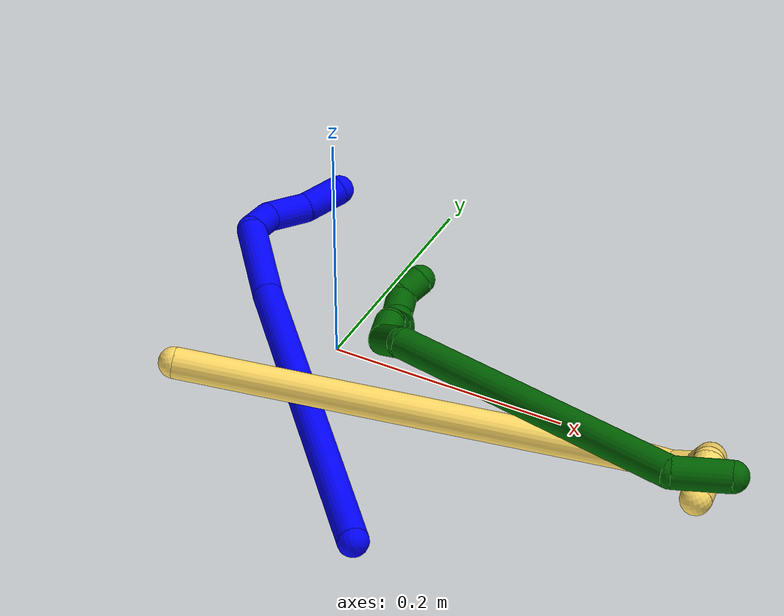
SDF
<sdf version="1.7">
 <world name="default">
  <model name="photoneo_s_sensor">
   <static>1</static>
   <pose>0 0 2 1.57079 1.57079 3.14159</pose>
   <link name="link">
    <inertial><mass>0.1</mass></inertial>
    <sensor name="sensor" type="depth">
     <update_rate>30</update_rate>
     <camera>
      <horizontal_fov>1.22</horizontal_fov>
      <image><width>1920</width><height>1200</height><format>B8G8R8</format></image>
      <clip><near>0.1</near><far>4</far></clip>
      <depth_camera><output>points</output></depth_camera>
     </camera>
     <plugin name="camera_plugin" filename="libgazebo_ros_depth_camera.so">
      <baseline>0.2</baseline>
      <alwaysOn>1</alwaysOn>
      <updateRate>0.0</updateRate>
      <cameraName>camera_ir</cameraName>
      <imageTopicName>/camera/color/image_raw</imageTopicName>
      <cameraInfoTopicName>/camera/color/camera_info</cameraInfoTopicName>
      <depthImageTopicName>/camera/depth/image_raw</depthImageTopicName>
      <depthImageCameraInfoTopicName>/camera/depth/camera_info</depthImageCameraInfoTopicName>
      <pointCloudTopicName>/camera/depth/points</pointCloudTopicName>
      <frameName>fr_optical</frameName>
      <pointCloudCutoff>0.1</pointCloudCutoff>
      <pointCloudCutoffMax>2.0</pointCloudCutoffMax>
      <distortionK1>0</distortionK1>
      <distortionK2>0</distortionK2>
      <distortionK3>0</distortionK3>
      <distortionT1>0</distortionT1>
      <distortionT2>0</distortionT2>
      <CxPrime>0</CxPrime>
      <Cx>0</Cx>
      <Cy>0</Cy>
      <focalLength>0</focalLength>
      <hackBaseline>0</hackBaseline>
     </plugin>
    </sensor>
   </link>
  </model>
  <model name="bin">
   <static>1</static>
   <link name="bottom">
    <collision name="collision-bottom">
     <pose>0 0 -0.01 0 -0 0</pose>
     <geometry><box><size>0.8 0.6 0.02</size></box></geometry>
     <surface>
      <friction><ode><mu>100</mu><mu2>100</mu2></ode></friction>
      <contact><collide_bitmask>65535</collide_bitmask></contact>
     </surface>
    </collision>
   </link>
   <link name="west_wall">
    <collision name="collision-west_wall">
     <pose>-0.41 0 0.1 0 -0 0</pose>
     <geometry><box><size>0.02 0.6 0.2</size></box></geometry>
     <surface>
      <friction><ode><mu>100</mu><mu2>100</mu2></ode></friction>
      <contact><collide_bitmask>65535</collide_bitmask></contact>
     </surface>
    </collision>
   </link>
   <link name="east_wall">
    <collision name="collision-east_wall">
     <pose>0.41 0 0.1 0 -0 0</pose>
     <geometry><box><size>0.02 0.6 0.2</size></box></geometry>
     <surface>
      <friction><ode><mu>100</mu><mu2>100</mu2></ode></friction>
      <contact><collide_bitmask>65535</collide_bitmask></contact>
     </surface>
    </collision>
   </link>
   <link name="south_wall">
    <collision name="collision-south_wall">
     <pose>0 -0.31 0.1 0 -0 0</pose>
     <geometry><box><size>0.8 0.02 0.2</size></box></geometry>
     <surface>
      <friction><ode><mu>100</mu><mu2>100</mu2></ode></friction>
      <contact><collide_bitmask>65535</collide_bitmask></contact>
     </surface>
    </collision>
   </link>
   <link name="north_wall">
    <collision name="collision-north_wall">
     <pose>0 0.31 0.1 0 -0 0</pose>
     <geometry><box><size>0.8 0.02 0.2</size></box></geometry>
     <surface>
      <friction><ode><mu>100</mu><mu2>100</mu2></ode></friction>
      <contact><collide_bitmask>65535</collide_bitmask></contact>
     </surface>
    </collision>
   </link>
  </model>
  <model name="1">
   <static>0</static>
   <link name="1">
    <collision name="collision-cylinder-e_1_1_4">
     <pose>-0.100348 0.091365 -0.085032 -2.32031 -0.677172 1.36016</pose>
     <geometry><cylinder><radius>0.0125</radius><length>0.320299</length></cylinder></geometry>
     <surface>
      <friction><ode><mu>1.16</mu><mu2>1.16</mu2><slip1>0</slip1><slip2>0</slip2></ode></friction>
      <contact><ode><kp>1e+06</kp><kd>1</kd><max_vel>0</max_vel><min_depth>0.001</min_depth></ode></contact>
     </surface>
    </collision>
    <visual name="visual-cylinder-e_1_1_4">
     <pose>-0.100348 0.091365 -0.085032 -2.32031 -0.677172 1.36016</pose>
     <geometry><cylinder><radius>0.0125</radius><length>0.320299</length></cylinder></geometry>
     <material><ambient>0 0 1 1</ambient></material>
    </visual>
    <collision name="collision-cylinder-e_2_4_5">
     <pose>-0.229288 0.204224 -0.185956 -2.20748 -0.81902 1.42141</pose>
     <geometry><cylinder><radius>0.0125</radius><length>0.078281</length></cylinder></geometry>
     <surface>
      <friction><ode><mu>1.16</mu><mu2>1.16</mu2><slip1>0</slip1><slip2>0</slip2></ode></friction>
      <contact><ode><kp>1e+06</kp><kd>1</kd><max_vel>0</max_vel><min_depth>0.001</min_depth></ode></contact>
     </surface>
    </collision>
    <visual name="visual-cylinder-e_2_4_5">
     <pose>-0.229288 0.204224 -0.185956 -2.20748 -0.81902 1.42141</pose>
     <geometry><cylinder><radius>0.0125</radius><length>0.078281</length></cylinder></geometry>
     <material><ambient>0 0 1 1</ambient></material>
    </visual>
    <collision name="collision-cylinder-e_3_5_6">
     <pose>-0.260822 0.240498 -0.2047 -1.76139 -0.193095 0.233572</pose>
     <geometry><cylinder><radius>0.0125</radius><length>0.030677</length></cylinder></geometry>
     <surface>
      <friction><ode><mu>1.16</mu><mu2>1.16</mu2><slip1>0</slip1><slip2>0</slip2></ode></friction>
      <contact><ode><kp>1e+06</kp><kd>1</kd><max_vel>0</max_vel><min_depth>0.001</min_depth></ode></contact>
     </surface>
    </collision>
    <visual name="visual-cylinder-e_3_5_6">
     <pose>-0.260822 0.240498 -0.2047 -1.76139 -0.193095 0.233572</pose>
     <geometry><cylinder><radius>0.0125</radius><length>0.030677</length></cylinder></geometry>
     <material><ambient>0 0 1 1</ambient></material>
    </visual>
    <collision name="collision-cylinder-e_4_6_7">
     <pose>-0.261681 0.272202 -0.201793 -1.24284 0.1161 -0.083179</pose>
     <geometry><cylinder><radius>0.0125</radius><length>0.035996</length></cylinder></geometry>
     <surface>
      <friction><ode><mu>1.16</mu><mu2>1.16</mu2><slip1>0</slip1><slip2>0</slip2></ode></friction>
      <contact><ode><kp>1e+06</kp><kd>1</kd><max_vel>0</max_vel><min_depth>0.001</min_depth></ode></contact>
     </surface>
    </collision>
    <visual name="visual-cylinder-e_4_6_7">
     <pose>-0.261681 0.272202 -0.201793 -1.24284 0.1161 -0.083179</pose>
     <geometry><cylinder><radius>0.0125</radius><length>0.035996</length></cylinder></geometry>
     <material><ambient>0 0 1 1</ambient></material>
    </visual>
    <collision name="collision-cylinder-e_5_7_2">
     <pose>-0.261358 0.30494 -0.189057 -1.15523 -0.101631 0.066273</pose>
     <geometry><cylinder><radius>0.0125</radius><length>0.034748</length></cylinder></geometry>
     <surface>
      <friction><ode><mu>1.16</mu><mu2>1.16</mu2><slip1>0</slip1><slip2>0</slip2></ode></friction>
      <contact><ode><kp>1e+06</kp><kd>1</kd><max_vel>0</max_vel><min_depth>0.001</min_depth></ode></contact>
     </surface>
    </collision>
    <visual name="visual-cylinder-e_5_7_2">
     <pose>-0.261358 0.30494 -0.189057 -1.15523 -0.101631 0.066273</pose>
     <geometry><cylinder><radius>0.0125</radius><length>0.034748</length></cylinder></geometry>
     <material><ambient>0 0 1 1</ambient></material>
    </visual>
    <collision name="collision-sphere-2">
     <pose>-0.263121 0.320753 -0.182079 0 -0 0</pose>
     <geometry><sphere><radius>0.0125</radius></sphere></geometry>
     <surface>
      <friction><ode><mu>1.16</mu><mu2>1.16</mu2><slip1>0</slip1><slip2>0</slip2></ode></friction>
      <contact><ode><kp>1e+06</kp><kd>1</kd><max_vel>0</max_vel><min_depth>0.001</min_depth></ode></contact>
     </surface>
    </collision>
    <visual name="visual-sphere-2">
     <pose>-0.263121 0.320753 -0.182079 0 -0 0</pose>
     <geometry><sphere><radius>0.0125</radius></sphere></geometry>
     <material><ambient>0 0 1 1</ambient></material>
    </visual>
    <collision name="collision-sphere-7">
     <pose>-0.259596 0.289126 -0.196035 0 -0 0</pose>
     <geometry><sphere><radius>0.0125</radius></sphere></geometry>
     <surface>
      <friction><ode><mu>1.16</mu><mu2>1.16</mu2><slip1>0</slip1><slip2>0</slip2></ode></friction>
      <contact><ode><kp>1e+06</kp><kd>1</kd><max_vel>0</max_vel><min_depth>0.001</min_depth></ode></contact>
     </surface>
    </collision>
    <visual name="visual-sphere-7">
     <pose>-0.259596 0.289126 -0.196035 0 -0 0</pose>
     <geometry><sphere><radius>0.0125</radius></sphere></geometry>
     <material><ambient>0 0 1 1</ambient></material>
    </visual>
    <collision name="collision-sphere-6">
     <pose>-0.263765 0.255279 -0.207551 0 -0 0</pose>
     <geometry><sphere><radius>0.0125</radius></sphere></geometry>
     <surface>
      <friction><ode><mu>1.16</mu><mu2>1.16</mu2><slip1>0</slip1><slip2>0</slip2></ode></friction>
      <contact><ode><kp>1e+06</kp><kd>1</kd><max_vel>0</max_vel><min_depth>0.001</min_depth></ode></contact>
     </surface>
    </collision>
    <visual name="visual-sphere-6">
     <pose>-0.263765 0.255279 -0.207551 0 -0 0</pose>
     <geometry><sphere><radius>0.0125</radius></sphere></geometry>
     <material><ambient>0 0 1 1</ambient></material>
    </visual>
    <collision name="collision-sphere-5">
     <pose>-0.257879 0.225717 -0.201848 0 -0 0</pose>
     <geometry><sphere><radius>0.0125</radius></sphere></geometry>
     <surface>
      <friction><ode><mu>1.16</mu><mu2>1.16</mu2><slip1>0</slip1><slip2>0</slip2></ode></friction>
      <contact><ode><kp>1e+06</kp><kd>1</kd><max_vel>0</max_vel><min_depth>0.001</min_depth></ode></contact>
     </surface>
    </collision>
    <visual name="visual-sphere-5">
     <pose>-0.257879 0.225717 -0.201848 0 -0 0</pose>
     <geometry><sphere><radius>0.0125</radius></sphere></geometry>
     <material><ambient>0 0 1 1</ambient></material>
    </visual>
    <collision name="collision-sphere-1">
     <geometry><sphere><radius>0.0125</radius></sphere></geometry>
     <surface>
      <friction><ode><mu>1.16</mu><mu2>1.16</mu2><slip1>0</slip1><slip2>0</slip2></ode></friction>
      <contact><ode><kp>1e+06</kp><kd>1</kd><max_vel>0</max_vel><min_depth>0.001</min_depth></ode></contact>
     </surface>
    </collision>
    <visual name="visual-sphere-1">
     <geometry><sphere><radius>0.0125</radius></sphere></geometry>
     <material><ambient>0 0 1 1</ambient></material>
    </visual>
    <collision name="collision-sphere-4">
     <pose>-0.200697 0.182731 -0.170064 0 -0 0</pose>
     <geometry><sphere><radius>0.0125</radius></sphere></geometry>
     <surface>
      <friction><ode><mu>1.16</mu><mu2>1.16</mu2><slip1>0</slip1><slip2>0</slip2></ode></friction>
      <contact><ode><kp>1e+06</kp><kd>1</kd><max_vel>0</max_vel><min_depth>0.001</min_depth></ode></contact>
     </surface>
    </collision>
    <visual name="visual-sphere-4">
     <pose>-0.200697 0.182731 -0.170064 0 -0 0</pose>
     <geometry><sphere><radius>0.0125</radius></sphere></geometry>
     <material><ambient>0 0 1 1</ambient></material>
    </visual>
    <inertial>
     <pose>-0.153185 0.146046 -0.12381 0 -0 0</pose>
     <mass>0.5</mass>
     <inertia>
      <ixx>0.002572</ixx>
      <ixy>0</ixy>
      <ixz>0</ixz>
      <iyy>0.003018</iyy>
      <iyz>0</iyz>
      <izz>0.000136</izz>
     </inertia>
    </inertial>
   </link>
   <pose>0.133324 -0.217616 0.021245 -0.354526 0.805311 -0.493916</pose>
  </model>
  <model name="5">
   <static>0</static>
   <link name="5">
    <collision name="collision-cylinder-e_1_1_4">
     <pose>0.143188 0.081442 -0.075019 -2.31517 0.912549 -1.68337</pose>
     <geometry><cylinder><radius>0.0125</radius><length>0.362012</length></cylinder></geometry>
     <surface>
      <friction><ode><mu>1.16</mu><mu2>1.16</mu2><slip1>0</slip1><slip2>0</slip2></ode></friction>
      <contact><ode><kp>1e+06</kp><kd>1</kd><max_vel>0</max_vel><min_depth>0.001</min_depth></ode></contact>
     </surface>
    </collision>
    <visual name="visual-cylinder-e_1_1_4">
     <pose>0.143188 0.081442 -0.075019 -2.31517 0.912549 -1.68337</pose>
     <geometry><cylinder><radius>0.0125</radius><length>0.362012</length></cylinder></geometry>
     <material><ambient>1 0.858824 0.4 1</ambient></material>
    </visual>
    <collision name="collision-cylinder-e_2_4_5">
     <pose>0.301376 0.16606 -0.153531 -2.4037 1.26578 -2.17141</pose>
     <geometry><cylinder><radius>0.0125</radius><length>0.031452</length></cylinder></geometry>
     <surface>
      <friction><ode><mu>1.16</mu><mu2>1.16</mu2><slip1>0</slip1><slip2>0</slip2></ode></friction>
      <contact><ode><kp>1e+06</kp><kd>1</kd><max_vel>0</max_vel><min_depth>0.001</min_depth></ode></contact>
     </surface>
    </collision>
    <visual name="visual-cylinder-e_2_4_5">
     <pose>0.301376 0.16606 -0.153531 -2.4037 1.26578 -2.17141</pose>
     <geometry><cylinder><radius>0.0125</radius><length>0.031452</length></cylinder></geometry>
     <material><ambient>1 0.858824 0.4 1</ambient></material>
    </visual>
    <collision name="collision-cylinder-e_3_5_6">
     <pose>0.327429 0.171994 -0.156357 -1.33296 1.31959 -1.09574</pose>
     <geometry><cylinder><radius>0.0125</radius><length>0.022824</length></cylinder></geometry>
     <surface>
      <friction><ode><mu>1.16</mu><mu2>1.16</mu2><slip1>0</slip1><slip2>0</slip2></ode></friction>
      <contact><ode><kp>1e+06</kp><kd>1</kd><max_vel>0</max_vel><min_depth>0.001</min_depth></ode></contact>
     </surface>
    </collision>
    <visual name="visual-cylinder-e_3_5_6">
     <pose>0.327429 0.171994 -0.156357 -1.33296 1.31959 -1.09574</pose>
     <geometry><cylinder><radius>0.0125</radius><length>0.022824</length></cylinder></geometry>
     <material><ambient>1 0.858824 0.4 1</ambient></material>
    </visual>
    <collision name="collision-cylinder-e_4_6_7">
     <pose>0.347022 0.174107 -0.148205 0.085826 0.849265 0.038824</pose>
     <geometry><cylinder><radius>0.0125</radius><length>0.022746</length></cylinder></geometry>
     <surface>
      <friction><ode><mu>1.16</mu><mu2>1.16</mu2><slip1>0</slip1><slip2>0</slip2></ode></friction>
      <contact><ode><kp>1e+06</kp><kd>1</kd><max_vel>0</max_vel><min_depth>0.001</min_depth></ode></contact>
     </surface>
    </collision>
    <visual name="visual-cylinder-e_4_6_7">
     <pose>0.347022 0.174107 -0.148205 0.085826 0.849265 0.038824</pose>
     <geometry><cylinder><radius>0.0125</radius><length>0.022746</length></cylinder></geometry>
     <material><ambient>1 0.858824 0.4 1</ambient></material>
    </visual>
    <collision name="collision-cylinder-e_5_7_8">
     <pose>0.36132 0.166897 -0.13561 0.909454 0.605448 0.303048</pose>
     <geometry><cylinder><radius>0.0125</radius><length>0.020238</length></cylinder></geometry>
     <surface>
      <friction><ode><mu>1.16</mu><mu2>1.16</mu2><slip1>0</slip1><slip2>0</slip2></ode></friction>
      <contact><ode><kp>1e+06</kp><kd>1</kd><max_vel>0</max_vel><min_depth>0.001</min_depth></ode></contact>
     </surface>
    </collision>
    <visual name="visual-cylinder-e_5_7_8">
     <pose>0.36132 0.166897 -0.13561 0.909454 0.605448 0.303048</pose>
     <geometry><cylinder><radius>0.0125</radius><length>0.020238</length></cylinder></geometry>
     <material><ambient>1 0.858824 0.4 1</ambient></material>
    </visual>
    <collision name="collision-cylinder-e_6_8_9">
     <pose>0.371436 0.15124 -0.130128 1.52998 0.446663 0.429347</pose>
     <geometry><cylinder><radius>0.0125</radius><length>0.020175</length></cylinder></geometry>
     <surface>
      <friction><ode><mu>1.16</mu><mu2>1.16</mu2><slip1>0</slip1><slip2>0</slip2></ode></friction>
      <contact><ode><kp>1e+06</kp><kd>1</kd><max_vel>0</max_vel><min_depth>0.001</min_depth></ode></contact>
     </surface>
    </collision>
    <visual name="visual-cylinder-e_6_8_9">
     <pose>0.371436 0.15124 -0.130128 1.52998 0.446663 0.429347</pose>
     <geometry><cylinder><radius>0.0125</radius><length>0.020175</length></cylinder></geometry>
     <material><ambient>1 0.858824 0.4 1</ambient></material>
    </visual>
    <collision name="collision-cylinder-e_7_9_2">
     <pose>0.379335 0.132503 -0.129736 1.56859 0.351882 0.351123</pose>
     <geometry><cylinder><radius>0.0125</radius><length>0.020553</length></cylinder></geometry>
     <surface>
      <friction><ode><mu>1.16</mu><mu2>1.16</mu2><slip1>0</slip1><slip2>0</slip2></ode></friction>
      <contact><ode><kp>1e+06</kp><kd>1</kd><max_vel>0</max_vel><min_depth>0.001</min_depth></ode></contact>
     </surface>
    </collision>
    <visual name="visual-cylinder-e_7_9_2">
     <pose>0.379335 0.132503 -0.129736 1.56859 0.351882 0.351123</pose>
     <geometry><cylinder><radius>0.0125</radius><length>0.020553</length></cylinder></geometry>
     <material><ambient>1 0.858824 0.4 1</ambient></material>
    </visual>
    <collision name="collision-sphere-2">
     <pose>0.382877 0.122857 -0.129714 0 -0 0</pose>
     <geometry><sphere><radius>0.0125</radius></sphere></geometry>
     <surface>
      <friction><ode><mu>1.16</mu><mu2>1.16</mu2><slip1>0</slip1><slip2>0</slip2></ode></friction>
      <contact><ode><kp>1e+06</kp><kd>1</kd><max_vel>0</max_vel><min_depth>0.001</min_depth></ode></contact>
     </surface>
    </collision>
    <visual name="visual-sphere-2">
     <pose>0.382877 0.122857 -0.129714 0 -0 0</pose>
     <geometry><sphere><radius>0.0125</radius></sphere></geometry>
     <material><ambient>1 0.858824 0.4 1</ambient></material>
    </visual>
    <collision name="collision-sphere-9">
     <pose>0.375794 0.14215 -0.129757 0 -0 0</pose>
     <geometry><sphere><radius>0.0125</radius></sphere></geometry>
     <surface>
      <friction><ode><mu>1.16</mu><mu2>1.16</mu2><slip1>0</slip1><slip2>0</slip2></ode></friction>
      <contact><ode><kp>1e+06</kp><kd>1</kd><max_vel>0</max_vel><min_depth>0.001</min_depth></ode></contact>
     </surface>
    </collision>
    <visual name="visual-sphere-9">
     <pose>0.375794 0.14215 -0.129757 0 -0 0</pose>
     <geometry><sphere><radius>0.0125</radius></sphere></geometry>
     <material><ambient>1 0.858824 0.4 1</ambient></material>
    </visual>
    <collision name="collision-sphere-4">
     <pose>0.286376 0.162883 -0.150037 0 -0 0</pose>
     <geometry><sphere><radius>0.0125</radius></sphere></geometry>
     <surface>
      <friction><ode><mu>1.16</mu><mu2>1.16</mu2><slip1>0</slip1><slip2>0</slip2></ode></friction>
      <contact><ode><kp>1e+06</kp><kd>1</kd><max_vel>0</max_vel><min_depth>0.001</min_depth></ode></contact>
     </surface>
    </collision>
    <visual name="visual-sphere-4">
     <pose>0.286376 0.162883 -0.150037 0 -0 0</pose>
     <geometry><sphere><radius>0.0125</radius></sphere></geometry>
     <material><ambient>1 0.858824 0.4 1</ambient></material>
    </visual>
    <collision name="collision-sphere-1">
     <geometry><sphere><radius>0.0125</radius></sphere></geometry>
     <surface>
      <friction><ode><mu>1.16</mu><mu2>1.16</mu2><slip1>0</slip1><slip2>0</slip2></ode></friction>
      <contact><ode><kp>1e+06</kp><kd>1</kd><max_vel>0</max_vel><min_depth>0.001</min_depth></ode></contact>
     </surface>
    </collision>
    <visual name="visual-sphere-1">
     <geometry><sphere><radius>0.0125</radius></sphere></geometry>
     <material><ambient>1 0.858824 0.4 1</ambient></material>
    </visual>
    <collision name="collision-sphere-8">
     <pose>0.367079 0.160331 -0.1305 0 -0 0</pose>
     <geometry><sphere><radius>0.0125</radius></sphere></geometry>
     <surface>
      <friction><ode><mu>1.16</mu><mu2>1.16</mu2><slip1>0</slip1><slip2>0</slip2></ode></friction>
      <contact><ode><kp>1e+06</kp><kd>1</kd><max_vel>0</max_vel><min_depth>0.001</min_depth></ode></contact>
     </surface>
    </collision>
    <visual name="visual-sphere-8">
     <pose>0.367079 0.160331 -0.1305 0 -0 0</pose>
     <geometry><sphere><radius>0.0125</radius></sphere></geometry>
     <material><ambient>1 0.858824 0.4 1</ambient></material>
    </visual>
    <collision name="collision-sphere-5">
     <pose>0.316376 0.169237 -0.157026 0 -0 0</pose>
     <geometry><sphere><radius>0.0125</radius></sphere></geometry>
     <surface>
      <friction><ode><mu>1.16</mu><mu2>1.16</mu2><slip1>0</slip1><slip2>0</slip2></ode></friction>
      <contact><ode><kp>1e+06</kp><kd>1</kd><max_vel>0</max_vel><min_depth>0.001</min_depth></ode></contact>
     </surface>
    </collision>
    <visual name="visual-sphere-5">
     <pose>0.316376 0.169237 -0.157026 0 -0 0</pose>
     <geometry><sphere><radius>0.0125</radius></sphere></geometry>
     <material><ambient>1 0.858824 0.4 1</ambient></material>
    </visual>
    <collision name="collision-sphere-6">
     <pose>0.338483 0.174751 -0.155689 0 -0 0</pose>
     <geometry><sphere><radius>0.0125</radius></sphere></geometry>
     <surface>
      <friction><ode><mu>1.16</mu><mu2>1.16</mu2><slip1>0</slip1><slip2>0</slip2></ode></friction>
      <contact><ode><kp>1e+06</kp><kd>1</kd><max_vel>0</max_vel><min_depth>0.001</min_depth></ode></contact>
     </surface>
    </collision>
    <visual name="visual-sphere-6">
     <pose>0.338483 0.174751 -0.155689 0 -0 0</pose>
     <geometry><sphere><radius>0.0125</radius></sphere></geometry>
     <material><ambient>1 0.858824 0.4 1</ambient></material>
    </visual>
    <collision name="collision-sphere-7">
     <pose>0.355561 0.173463 -0.14072 0 -0 0</pose>
     <geometry><sphere><radius>0.0125</radius></sphere></geometry>
     <surface>
      <friction><ode><mu>1.16</mu><mu2>1.16</mu2><slip1>0</slip1><slip2>0</slip2></ode></friction>
      <contact><ode><kp>1e+06</kp><kd>1</kd><max_vel>0</max_vel><min_depth>0.001</min_depth></ode></contact>
     </surface>
    </collision>
    <visual name="visual-sphere-7">
     <pose>0.355561 0.173463 -0.14072 0 -0 0</pose>
     <geometry><sphere><radius>0.0125</radius></sphere></geometry>
     <material><ambient>1 0.858824 0.4 1</ambient></material>
    </visual>
    <inertial>
     <pose>0.198567 0.103488 -0.093925 0 -0 0</pose>
     <mass>0.5</mass>
     <inertia>
      <ixx>-0.00265</ixx>
      <ixy>0</ixy>
      <ixz>0</ixz>
      <iyy>0.000203</iyy>
      <iyz>0</iyz>
      <izz>-0.00494</izz>
     </inertia>
    </inertial>
   </link>
   <pose>-0.06167 -0.147137 0.068538 0.181417 -0.260125 -0.241865</pose>
  </model>
  <model name="6">
   <static>0</static>
   <link name="6">
    <collision name="collision-cylinder-e_1_1_4">
     <pose>-0.004652 -0.012598 -0.01821 2.53637 -0.20708 -0.64261</pose>
     <geometry><cylinder><radius>0.0125</radius><length>0.045252</length></cylinder></geometry>
     <surface>
      <friction><ode><mu>1.16</mu><mu2>1.16</mu2><slip1>0</slip1><slip2>0</slip2></ode></friction>
      <contact><ode><kp>1e+06</kp><kd>1</kd><max_vel>0</max_vel><min_depth>0.001</min_depth></ode></contact>
     </surface>
    </collision>
    <visual name="visual-cylinder-e_1_1_4">
     <pose>-0.004652 -0.012598 -0.01821 2.53637 -0.20708 -0.64261</pose>
     <geometry><cylinder><radius>0.0125</radius><length>0.045252</length></cylinder></geometry>
     <material><ambient>0 0.392157 0.003922 1</ambient></material>
    </visual>
    <collision name="collision-cylinder-e_2_4_5">
     <pose>-0.071438 -0.022137 -0.153897 -3.11556 -0.486361 3.03676</pose>
     <geometry><cylinder><radius>0.0125</radius><length>0.265865</length></cylinder></geometry>
     <surface>
      <friction><ode><mu>1.16</mu><mu2>1.16</mu2><slip1>0</slip1><slip2>0</slip2></ode></friction>
      <contact><ode><kp>1e+06</kp><kd>1</kd><max_vel>0</max_vel><min_depth>0.001</min_depth></ode></contact>
     </surface>
    </collision>
    <visual name="visual-cylinder-e_2_4_5">
     <pose>-0.071438 -0.022137 -0.153897 -3.11556 -0.486361 3.03676</pose>
     <geometry><cylinder><radius>0.0125</radius><length>0.265865</length></cylinder></geometry>
     <material><ambient>0 0.392157 0.003922 1</ambient></material>
    </visual>
    <collision name="collision-cylinder-e_3_5_6">
     <pose>-0.136695 0.000567 -0.296013 -2.46846 -0.098775 0.280684</pose>
     <geometry><cylinder><radius>0.0125</radius><length>0.063332</length></cylinder></geometry>
     <surface>
      <friction><ode><mu>1.16</mu><mu2>1.16</mu2><slip1>0</slip1><slip2>0</slip2></ode></friction>
      <contact><ode><kp>1e+06</kp><kd>1</kd><max_vel>0</max_vel><min_depth>0.001</min_depth></ode></contact>
     </surface>
    </collision>
    <visual name="visual-cylinder-e_3_5_6">
     <pose>-0.136695 0.000567 -0.296013 -2.46846 -0.098775 0.280684</pose>
     <geometry><cylinder><radius>0.0125</radius><length>0.063332</length></cylinder></geometry>
     <material><ambient>0 0.392157 0.003922 1</ambient></material>
    </visual>
    <collision name="collision-cylinder-e_4_6_7">
     <pose>-0.146468 0.03008 -0.324399 -1.93385 -0.562181 0.792804</pose>
     <geometry><cylinder><radius>0.0125</radius><length>0.024951</length></cylinder></geometry>
     <surface>
      <friction><ode><mu>1.16</mu><mu2>1.16</mu2><slip1>0</slip1><slip2>0</slip2></ode></friction>
      <contact><ode><kp>1e+06</kp><kd>1</kd><max_vel>0</max_vel><min_depth>0.001</min_depth></ode></contact>
     </surface>
    </collision>
    <visual name="visual-cylinder-e_4_6_7">
     <pose>-0.146468 0.03008 -0.324399 -1.93385 -0.562181 0.792804</pose>
     <geometry><cylinder><radius>0.0125</radius><length>0.024951</length></cylinder></geometry>
     <material><ambient>0 0.392157 0.003922 1</ambient></material>
    </visual>
    <collision name="collision-cylinder-e_5_7_8">
     <pose>-0.152197 0.048943 -0.333004 -2.0658 0.089867 -0.150455</pose>
     <geometry><cylinder><radius>0.0125</radius><length>0.020526</length></cylinder></geometry>
     <surface>
      <friction><ode><mu>1.16</mu><mu2>1.16</mu2><slip1>0</slip1><slip2>0</slip2></ode></friction>
      <contact><ode><kp>1e+06</kp><kd>1</kd><max_vel>0</max_vel><min_depth>0.001</min_depth></ode></contact>
     </surface>
    </collision>
    <visual name="visual-cylinder-e_5_7_8">
     <pose>-0.152197 0.048943 -0.333004 -2.0658 0.089867 -0.150455</pose>
     <geometry><cylinder><radius>0.0125</radius><length>0.020526</length></cylinder></geometry>
     <material><ambient>0 0.392157 0.003922 1</ambient></material>
    </visual>
    <collision name="collision-cylinder-e_6_8_9">
     <pose>-0.150606 0.066662 -0.342706 -2.07786 0.067035 -0.113843</pose>
     <geometry><cylinder><radius>0.0125</radius><length>0.020006</length></cylinder></geometry>
     <surface>
      <friction><ode><mu>1.16</mu><mu2>1.16</mu2><slip1>0</slip1><slip2>0</slip2></ode></friction>
      <contact><ode><kp>1e+06</kp><kd>1</kd><max_vel>0</max_vel><min_depth>0.001</min_depth></ode></contact>
     </surface>
    </collision>
    <visual name="visual-cylinder-e_6_8_9">
     <pose>-0.150606 0.066662 -0.342706 -2.07786 0.067035 -0.113843</pose>
     <geometry><cylinder><radius>0.0125</radius><length>0.020006</length></cylinder></geometry>
     <material><ambient>0 0.392157 0.003922 1</ambient></material>
    </visual>
    <collision name="collision-cylinder-e_7_9_10">
     <pose>-0.155092 0.081892 -0.353167 -2.28282 -0.540454 1.08813</pose>
     <geometry><cylinder><radius>0.0125</radius><length>0.020043</length></cylinder></geometry>
     <surface>
      <friction><ode><mu>1.16</mu><mu2>1.16</mu2><slip1>0</slip1><slip2>0</slip2></ode></friction>
      <contact><ode><kp>1e+06</kp><kd>1</kd><max_vel>0</max_vel><min_depth>0.001</min_depth></ode></contact>
     </surface>
    </collision>
    <visual name="visual-cylinder-e_7_9_10">
     <pose>-0.155092 0.081892 -0.353167 -2.28282 -0.540454 1.08813</pose>
     <geometry><cylinder><radius>0.0125</radius><length>0.020043</length></cylinder></geometry>
     <material><ambient>0 0.392157 0.003922 1</ambient></material>
    </visual>
    <collision name="collision-cylinder-e_8_10_11">
     <pose>-0.168824 0.093552 -0.358467 -1.50977 -1.02878 0.977308</pose>
     <geometry><cylinder><radius>0.0125</radius><length>0.020022</length></cylinder></geometry>
     <surface>
      <friction><ode><mu>1.16</mu><mu2>1.16</mu2><slip1>0</slip1><slip2>0</slip2></ode></friction>
      <contact><ode><kp>1e+06</kp><kd>1</kd><max_vel>0</max_vel><min_depth>0.001</min_depth></ode></contact>
     </surface>
    </collision>
    <visual name="visual-cylinder-e_8_10_11">
     <pose>-0.168824 0.093552 -0.358467 -1.50977 -1.02878 0.977308</pose>
     <geometry><cylinder><radius>0.0125</radius><length>0.020022</length></cylinder></geometry>
     <material><ambient>0 0.392157 0.003922 1</ambient></material>
    </visual>
    <collision name="collision-cylinder-e_9_11_2">
     <pose>-0.18227 0.106592 -0.354392 -1.1259 -0.508598 0.325164</pose>
     <geometry><cylinder><radius>0.0125</radius><length>0.020003</length></cylinder></geometry>
     <surface>
      <friction><ode><mu>1.16</mu><mu2>1.16</mu2><slip1>0</slip1><slip2>0</slip2></ode></friction>
      <contact><ode><kp>1e+06</kp><kd>1</kd><max_vel>0</max_vel><min_depth>0.001</min_depth></ode></contact>
     </surface>
    </collision>
    <visual name="visual-cylinder-e_9_11_2">
     <pose>-0.18227 0.106592 -0.354392 -1.1259 -0.508598 0.325164</pose>
     <geometry><cylinder><radius>0.0125</radius><length>0.020003</length></cylinder></geometry>
     <material><ambient>0 0.392157 0.003922 1</ambient></material>
    </visual>
    <collision name="collision-sphere-2">
     <pose>-0.187141 0.114477 -0.350633 0 -0 0</pose>
     <geometry><sphere><radius>0.0125</radius></sphere></geometry>
     <surface>
      <friction><ode><mu>1.16</mu><mu2>1.16</mu2><slip1>0</slip1><slip2>0</slip2></ode></friction>
      <contact><ode><kp>1e+06</kp><kd>1</kd><max_vel>0</max_vel><min_depth>0.001</min_depth></ode></contact>
     </surface>
    </collision>
    <visual name="visual-sphere-2">
     <pose>-0.187141 0.114477 -0.350633 0 -0 0</pose>
     <geometry><sphere><radius>0.0125</radius></sphere></geometry>
     <material><ambient>0 0.392157 0.003922 1</ambient></material>
    </visual>
    <collision name="collision-sphere-11">
     <pose>-0.1774 0.098707 -0.358152 0 -0 0</pose>
     <geometry><sphere><radius>0.0125</radius></sphere></geometry>
     <surface>
      <friction><ode><mu>1.16</mu><mu2>1.16</mu2><slip1>0</slip1><slip2>0</slip2></ode></friction>
      <contact><ode><kp>1e+06</kp><kd>1</kd><max_vel>0</max_vel><min_depth>0.001</min_depth></ode></contact>
     </surface>
    </collision>
    <visual name="visual-sphere-11">
     <pose>-0.1774 0.098707 -0.358152 0 -0 0</pose>
     <geometry><sphere><radius>0.0125</radius></sphere></geometry>
     <material><ambient>0 0.392157 0.003922 1</ambient></material>
    </visual>
    <collision name="collision-sphere-10">
     <pose>-0.160248 0.088397 -0.358782 0 -0 0</pose>
     <geometry><sphere><radius>0.0125</radius></sphere></geometry>
     <surface>
      <friction><ode><mu>1.16</mu><mu2>1.16</mu2><slip1>0</slip1><slip2>0</slip2></ode></friction>
      <contact><ode><kp>1e+06</kp><kd>1</kd><max_vel>0</max_vel><min_depth>0.001</min_depth></ode></contact>
     </surface>
    </collision>
    <visual name="visual-sphere-10">
     <pose>-0.160248 0.088397 -0.358782 0 -0 0</pose>
     <geometry><sphere><radius>0.0125</radius></sphere></geometry>
     <material><ambient>0 0.392157 0.003922 1</ambient></material>
    </visual>
    <collision name="collision-sphere-9">
     <pose>-0.149936 0.075387 -0.347553 0 -0 0</pose>
     <geometry><sphere><radius>0.0125</radius></sphere></geometry>
     <surface>
      <friction><ode><mu>1.16</mu><mu2>1.16</mu2><slip1>0</slip1><slip2>0</slip2></ode></friction>
      <contact><ode><kp>1e+06</kp><kd>1</kd><max_vel>0</max_vel><min_depth>0.001</min_depth></ode></contact>
     </surface>
    </collision>
    <visual name="visual-sphere-9">
     <pose>-0.149936 0.075387 -0.347553 0 -0 0</pose>
     <geometry><sphere><radius>0.0125</radius></sphere></geometry>
     <material><ambient>0 0.392157 0.003922 1</ambient></material>
    </visual>
    <collision name="collision-sphere-4">
     <pose>-0.009304 -0.025196 -0.036419 0 -0 0</pose>
     <geometry><sphere><radius>0.0125</radius></sphere></geometry>
     <surface>
      <friction><ode><mu>1.16</mu><mu2>1.16</mu2><slip1>0</slip1><slip2>0</slip2></ode></friction>
      <contact><ode><kp>1e+06</kp><kd>1</kd><max_vel>0</max_vel><min_depth>0.001</min_depth></ode></contact>
     </surface>
    </collision>
    <visual name="visual-sphere-4">
     <pose>-0.009304 -0.025196 -0.036419 0 -0 0</pose>
     <geometry><sphere><radius>0.0125</radius></sphere></geometry>
     <material><ambient>0 0.392157 0.003922 1</ambient></material>
    </visual>
    <collision name="collision-sphere-1">
     <geometry><sphere><radius>0.0125</radius></sphere></geometry>
     <surface>
      <friction><ode><mu>1.16</mu><mu2>1.16</mu2><slip1>0</slip1><slip2>0</slip2></ode></friction>
      <contact><ode><kp>1e+06</kp><kd>1</kd><max_vel>0</max_vel><min_depth>0.001</min_depth></ode></contact>
     </surface>
    </collision>
    <visual name="visual-sphere-1">
     <geometry><sphere><radius>0.0125</radius></sphere></geometry>
     <material><ambient>0 0.392157 0.003922 1</ambient></material>
    </visual>
    <collision name="collision-sphere-8">
     <pose>-0.151276 0.057937 -0.337859 0 -0 0</pose>
     <geometry><sphere><radius>0.0125</radius></sphere></geometry>
     <surface>
      <friction><ode><mu>1.16</mu><mu2>1.16</mu2><slip1>0</slip1><slip2>0</slip2></ode></friction>
      <contact><ode><kp>1e+06</kp><kd>1</kd><max_vel>0</max_vel><min_depth>0.001</min_depth></ode></contact>
     </surface>
    </collision>
    <visual name="visual-sphere-8">
     <pose>-0.151276 0.057937 -0.337859 0 -0 0</pose>
     <geometry><sphere><radius>0.0125</radius></sphere></geometry>
     <material><ambient>0 0.392157 0.003922 1</ambient></material>
    </visual>
    <collision name="collision-sphere-5">
     <pose>-0.133573 -0.019078 -0.271375 0 -0 0</pose>
     <geometry><sphere><radius>0.0125</radius></sphere></geometry>
     <surface>
      <friction><ode><mu>1.16</mu><mu2>1.16</mu2><slip1>0</slip1><slip2>0</slip2></ode></friction>
      <contact><ode><kp>1e+06</kp><kd>1</kd><max_vel>0</max_vel><min_depth>0.001</min_depth></ode></contact>
     </surface>
    </collision>
    <visual name="visual-sphere-5">
     <pose>-0.133573 -0.019078 -0.271375 0 -0 0</pose>
     <geometry><sphere><radius>0.0125</radius></sphere></geometry>
     <material><ambient>0 0.392157 0.003922 1</ambient></material>
    </visual>
    <collision name="collision-sphere-6">
     <pose>-0.139818 0.020213 -0.320651 0 -0 0</pose>
     <geometry><sphere><radius>0.0125</radius></sphere></geometry>
     <surface>
      <friction><ode><mu>1.16</mu><mu2>1.16</mu2><slip1>0</slip1><slip2>0</slip2></ode></friction>
      <contact><ode><kp>1e+06</kp><kd>1</kd><max_vel>0</max_vel><min_depth>0.001</min_depth></ode></contact>
     </surface>
    </collision>
    <visual name="visual-sphere-6">
     <pose>-0.139818 0.020213 -0.320651 0 -0 0</pose>
     <geometry><sphere><radius>0.0125</radius></sphere></geometry>
     <material><ambient>0 0.392157 0.003922 1</ambient></material>
    </visual>
    <collision name="collision-sphere-7">
     <pose>-0.153118 0.039948 -0.328148 0 -0 0</pose>
     <geometry><sphere><radius>0.0125</radius></sphere></geometry>
     <surface>
      <friction><ode><mu>1.16</mu><mu2>1.16</mu2><slip1>0</slip1><slip2>0</slip2></ode></friction>
      <contact><ode><kp>1e+06</kp><kd>1</kd><max_vel>0</max_vel><min_depth>0.001</min_depth></ode></contact>
     </surface>
    </collision>
    <visual name="visual-sphere-7">
     <pose>-0.153118 0.039948 -0.328148 0 -0 0</pose>
     <geometry><sphere><radius>0.0125</radius></sphere></geometry>
     <material><ambient>0 0.392157 0.003922 1</ambient></material>
    </visual>
    <inertial>
     <pose>-0.095574 0.004631 -0.207234 0 -0 0</pose>
     <mass>0.5</mass>
     <inertia>
      <ixx>-0.001214</ixx>
      <ixy>0</ixy>
      <ixz>0</ixz>
      <iyy>0.001706</iyy>
      <iyz>0</iyz>
      <izz>0.000665</izz>
     </inertia>
    </inertial>
   </link>
   <pose>0.388501 -0.109099 0.104026 -0.736142 0.856625 -0.876034</pose>
  </model>
 </world>
</sdf>
